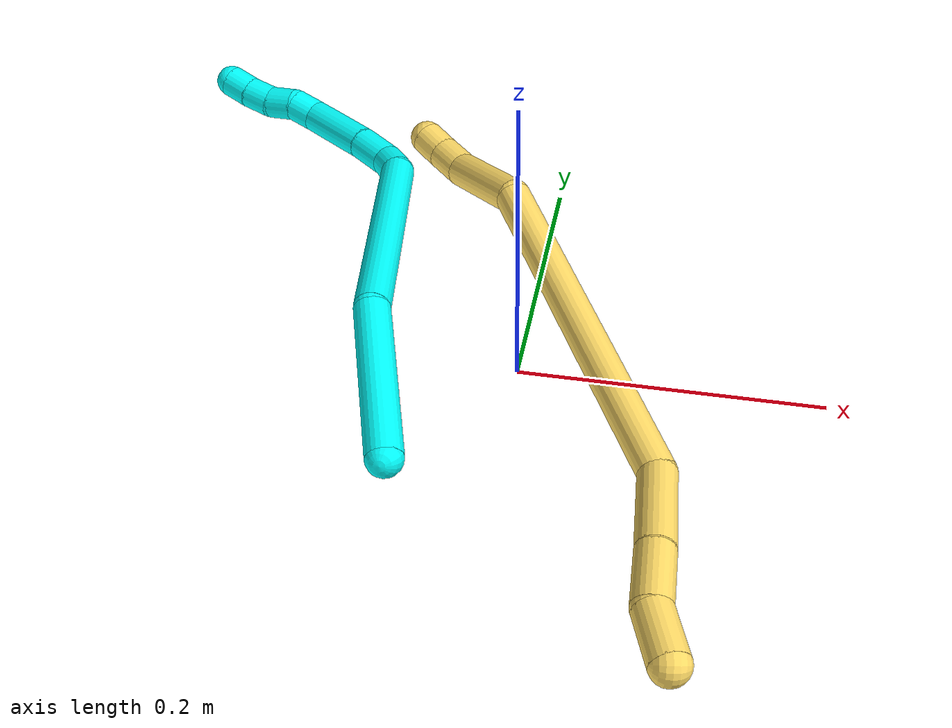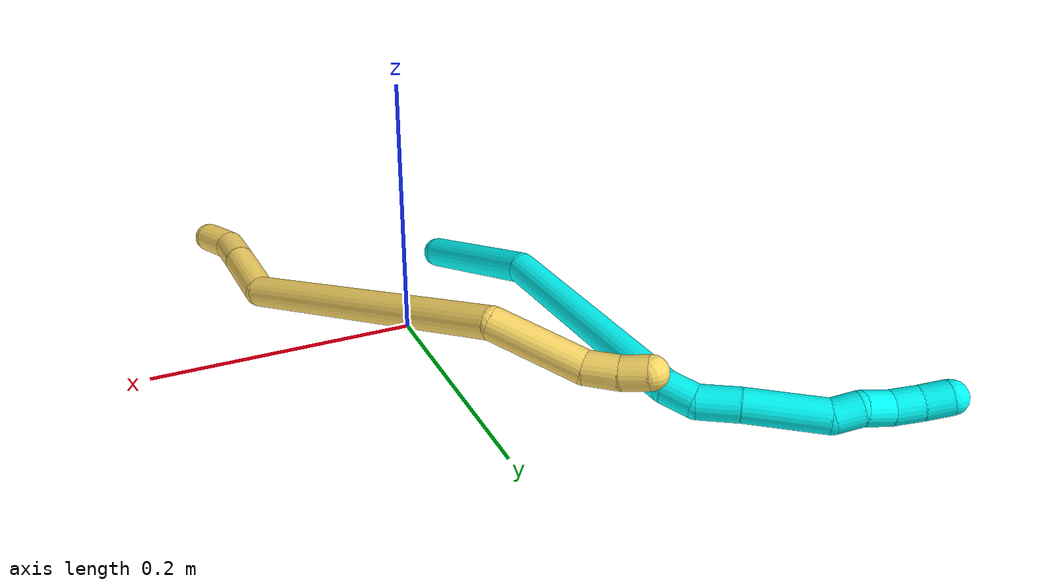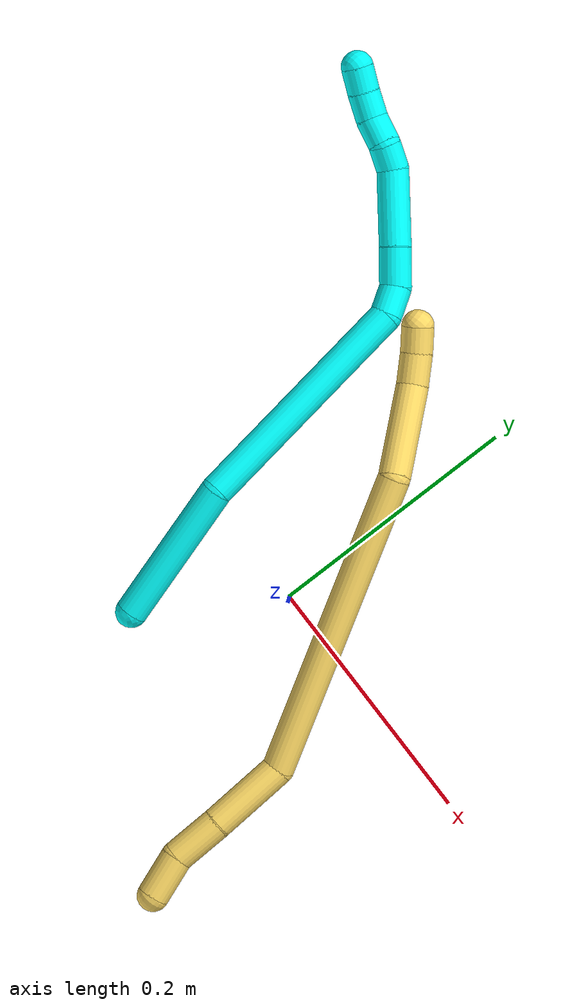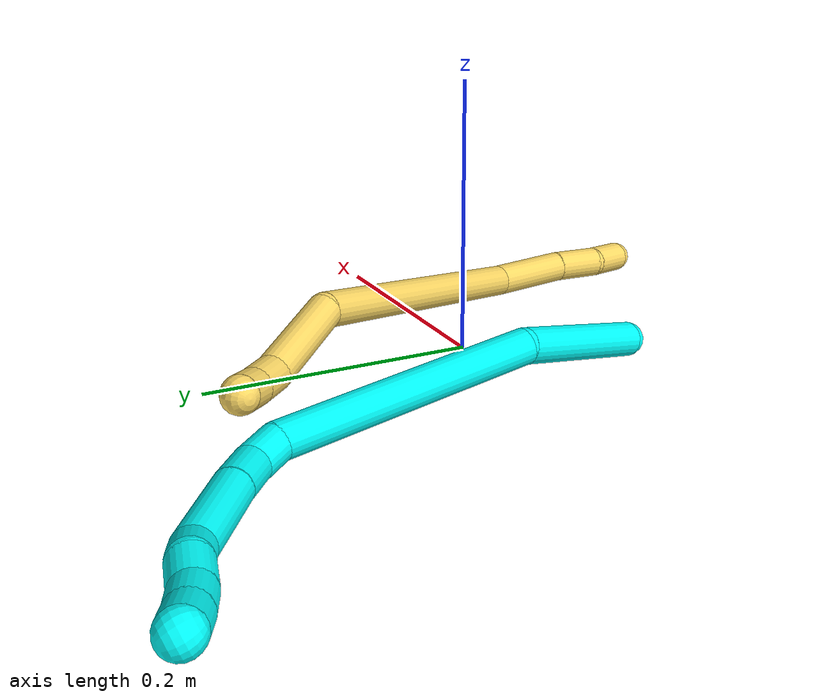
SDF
<sdf version="1.7">
 <world name="default">
  <model name="photoneo_s_sensor">
   <static>1</static>
   <pose>0 0 2 1.57079 1.57079 3.14159</pose>
   <link name="link">
    <inertial><mass>0.1</mass></inertial>
    <sensor name="sensor" type="depth">
     <update_rate>30</update_rate>
     <camera>
      <horizontal_fov>1.22</horizontal_fov>
      <image><width>1920</width><height>1200</height><format>B8G8R8</format></image>
      <clip><near>0.1</near><far>4</far></clip>
      <depth_camera><output>points</output></depth_camera>
     </camera>
     <plugin name="camera_plugin" filename="libgazebo_ros_depth_camera.so">
      <baseline>0.2</baseline>
      <alwaysOn>1</alwaysOn>
      <updateRate>0.0</updateRate>
      <cameraName>camera_ir</cameraName>
      <imageTopicName>/camera/color/image_raw</imageTopicName>
      <cameraInfoTopicName>/camera/color/camera_info</cameraInfoTopicName>
      <depthImageTopicName>/camera/depth/image_raw</depthImageTopicName>
      <depthImageCameraInfoTopicName>/camera/depth/camera_info</depthImageCameraInfoTopicName>
      <pointCloudTopicName>/camera/depth/points</pointCloudTopicName>
      <frameName>fr_optical</frameName>
      <pointCloudCutoff>0.1</pointCloudCutoff>
      <pointCloudCutoffMax>2.0</pointCloudCutoffMax>
      <distortionK1>0</distortionK1>
      <distortionK2>0</distortionK2>
      <distortionK3>0</distortionK3>
      <distortionT1>0</distortionT1>
      <distortionT2>0</distortionT2>
      <CxPrime>0</CxPrime>
      <Cx>0</Cx>
      <Cy>0</Cy>
      <focalLength>0</focalLength>
      <hackBaseline>0</hackBaseline>
     </plugin>
    </sensor>
   </link>
  </model>
  <model name="bin">
   <static>1</static>
   <link name="bottom">
    <collision name="collision-bottom">
     <pose>0 0 -0.01 0 -0 0</pose>
     <geometry><box><size>0.8 0.6 0.02</size></box></geometry>
     <surface>
      <friction><ode><mu>100</mu><mu2>100</mu2></ode></friction>
      <contact><collide_bitmask>65535</collide_bitmask></contact>
     </surface>
    </collision>
   </link>
   <link name="west_wall">
    <collision name="collision-west_wall">
     <pose>-0.41 0 0.1 0 -0 0</pose>
     <geometry><box><size>0.02 0.6 0.2</size></box></geometry>
     <surface>
      <friction><ode><mu>100</mu><mu2>100</mu2></ode></friction>
      <contact><collide_bitmask>65535</collide_bitmask></contact>
     </surface>
    </collision>
   </link>
   <link name="east_wall">
    <collision name="collision-east_wall">
     <pose>0.41 0 0.1 0 -0 0</pose>
     <geometry><box><size>0.02 0.6 0.2</size></box></geometry>
     <surface>
      <friction><ode><mu>100</mu><mu2>100</mu2></ode></friction>
      <contact><collide_bitmask>65535</collide_bitmask></contact>
     </surface>
    </collision>
   </link>
   <link name="south_wall">
    <collision name="collision-south_wall">
     <pose>0 -0.31 0.1 0 -0 0</pose>
     <geometry><box><size>0.8 0.02 0.2</size></box></geometry>
     <surface>
      <friction><ode><mu>100</mu><mu2>100</mu2></ode></friction>
      <contact><collide_bitmask>65535</collide_bitmask></contact>
     </surface>
    </collision>
   </link>
   <link name="north_wall">
    <collision name="collision-north_wall">
     <pose>0 0.31 0.1 0 -0 0</pose>
     <geometry><box><size>0.8 0.02 0.2</size></box></geometry>
     <surface>
      <friction><ode><mu>100</mu><mu2>100</mu2></ode></friction>
      <contact><collide_bitmask>65535</collide_bitmask></contact>
     </surface>
    </collision>
   </link>
  </model>
  <model name="3">
   <static>0</static>
   <link name="3">
    <collision name="collision-cylinder-e_1_1_4">
     <pose>-0.034478 0.004618 0.046215 -0.099585 -0.638569 0.032947</pose>
     <geometry><cylinder><radius>0.0125</radius><length>0.115688</length></cylinder></geometry>
     <surface>
      <friction><ode><mu>1.16</mu><mu2>1.16</mu2><slip1>0</slip1><slip2>0</slip2></ode></friction>
      <contact><ode><kp>1e+06</kp><kd>1</kd><max_vel>0</max_vel><min_depth>0.001</min_depth></ode></contact>
     </surface>
    </collision>
    <visual name="visual-cylinder-e_1_1_4">
     <pose>-0.034478 0.004618 0.046215 -0.099585 -0.638569 0.032947</pose>
     <geometry><cylinder><radius>0.0125</radius><length>0.115688</length></cylinder></geometry>
     <material><ambient>0.003922 1 0.996078 1</ambient></material>
    </visual>
    <collision name="collision-cylinder-e_2_4_5">
     <pose>-0.095939 0.014027 0.181366 -0.053829 -0.294178 0.007977</pose>
     <geometry><cylinder><radius>0.0125</radius><length>0.186124</length></cylinder></geometry>
     <surface>
      <friction><ode><mu>1.16</mu><mu2>1.16</mu2><slip1>0</slip1><slip2>0</slip2></ode></friction>
      <contact><ode><kp>1e+06</kp><kd>1</kd><max_vel>0</max_vel><min_depth>0.001</min_depth></ode></contact>
     </surface>
    </collision>
    <visual name="visual-cylinder-e_2_4_5">
     <pose>-0.095939 0.014027 0.181366 -0.053829 -0.294178 0.007977</pose>
     <geometry><cylinder><radius>0.0125</radius><length>0.186124</length></cylinder></geometry>
     <material><ambient>0.003922 1 0.996078 1</ambient></material>
    </visual>
    <collision name="collision-cylinder-e_3_5_6">
     <pose>-0.126581 0.024349 0.280157 -0.511268 -0.313109 0.08246</pose>
     <geometry><cylinder><radius>0.0125</radius><length>0.023757</length></cylinder></geometry>
     <surface>
      <friction><ode><mu>1.16</mu><mu2>1.16</mu2><slip1>0</slip1><slip2>0</slip2></ode></friction>
      <contact><ode><kp>1e+06</kp><kd>1</kd><max_vel>0</max_vel><min_depth>0.001</min_depth></ode></contact>
     </surface>
    </collision>
    <visual name="visual-cylinder-e_3_5_6">
     <pose>-0.126581 0.024349 0.280157 -0.511268 -0.313109 0.08246</pose>
     <geometry><cylinder><radius>0.0125</radius><length>0.023757</length></cylinder></geometry>
     <material><ambient>0.003922 1 0.996078 1</ambient></material>
    </visual>
    <collision name="collision-cylinder-e_4_6_7">
     <pose>-0.138517 0.039822 0.298261 -0.878379 -0.569771 0.273441</pose>
     <geometry><cylinder><radius>0.0125</radius><length>0.030687</length></cylinder></geometry>
     <surface>
      <friction><ode><mu>1.16</mu><mu2>1.16</mu2><slip1>0</slip1><slip2>0</slip2></ode></friction>
      <contact><ode><kp>1e+06</kp><kd>1</kd><max_vel>0</max_vel><min_depth>0.001</min_depth></ode></contact>
     </surface>
    </collision>
    <visual name="visual-cylinder-e_4_6_7">
     <pose>-0.138517 0.039822 0.298261 -0.878379 -0.569771 0.273441</pose>
     <geometry><cylinder><radius>0.0125</radius><length>0.030687</length></cylinder></geometry>
     <material><ambient>0.003922 1 0.996078 1</ambient></material>
    </visual>
    <collision name="collision-cylinder-e_5_7_8">
     <pose>-0.160868 0.070355 0.322874 -0.899195 -0.491349 0.240823</pose>
     <geometry><cylinder><radius>0.0125</radius><length>0.059658</length></cylinder></geometry>
     <surface>
      <friction><ode><mu>1.16</mu><mu2>1.16</mu2><slip1>0</slip1><slip2>0</slip2></ode></friction>
      <contact><ode><kp>1e+06</kp><kd>1</kd><max_vel>0</max_vel><min_depth>0.001</min_depth></ode></contact>
     </surface>
    </collision>
    <visual name="visual-cylinder-e_5_7_8">
     <pose>-0.160868 0.070355 0.322874 -0.899195 -0.491349 0.240823</pose>
     <geometry><cylinder><radius>0.0125</radius><length>0.059658</length></cylinder></geometry>
     <material><ambient>0.003922 1 0.996078 1</ambient></material>
    </visual>
    <collision name="collision-cylinder-e_6_8_9">
     <pose>-0.181695 0.098437 0.341233 -1.31073 -0.716494 0.560463</pose>
     <geometry><cylinder><radius>0.0125</radius><length>0.020566</length></cylinder></geometry>
     <surface>
      <friction><ode><mu>1.16</mu><mu2>1.16</mu2><slip1>0</slip1><slip2>0</slip2></ode></friction>
      <contact><ode><kp>1e+06</kp><kd>1</kd><max_vel>0</max_vel><min_depth>0.001</min_depth></ode></contact>
     </surface>
    </collision>
    <visual name="visual-cylinder-e_6_8_9">
     <pose>-0.181695 0.098437 0.341233 -1.31073 -0.716494 0.560463</pose>
     <geometry><cylinder><radius>0.0125</radius><length>0.020566</length></cylinder></geometry>
     <material><ambient>0.003922 1 0.996078 1</ambient></material>
    </visual>
    <collision name="collision-cylinder-e_7_9_10">
     <pose>-0.192005 0.115896 0.345615 -1.3356 -0.334067 0.264399</pose>
     <geometry><cylinder><radius>0.0125</radius><length>0.021693</length></cylinder></geometry>
     <surface>
      <friction><ode><mu>1.16</mu><mu2>1.16</mu2><slip1>0</slip1><slip2>0</slip2></ode></friction>
      <contact><ode><kp>1e+06</kp><kd>1</kd><max_vel>0</max_vel><min_depth>0.001</min_depth></ode></contact>
     </surface>
    </collision>
    <visual name="visual-cylinder-e_7_9_10">
     <pose>-0.192005 0.115896 0.345615 -1.3356 -0.334067 0.264399</pose>
     <geometry><cylinder><radius>0.0125</radius><length>0.021693</length></cylinder></geometry>
     <material><ambient>0.003922 1 0.996078 1</ambient></material>
    </visual>
    <collision name="collision-cylinder-e_8_10_11">
     <pose>-0.201726 0.134218 0.350823 -1.24535 -0.610056 0.444632</pose>
     <geometry><cylinder><radius>0.0125</radius><length>0.021522</length></cylinder></geometry>
     <surface>
      <friction><ode><mu>1.16</mu><mu2>1.16</mu2><slip1>0</slip1><slip2>0</slip2></ode></friction>
      <contact><ode><kp>1e+06</kp><kd>1</kd><max_vel>0</max_vel><min_depth>0.001</min_depth></ode></contact>
     </surface>
    </collision>
    <visual name="visual-cylinder-e_8_10_11">
     <pose>-0.201726 0.134218 0.350823 -1.24535 -0.610056 0.444632</pose>
     <geometry><cylinder><radius>0.0125</radius><length>0.021522</length></cylinder></geometry>
     <material><ambient>0.003922 1 0.996078 1</ambient></material>
    </visual>
    <collision name="collision-cylinder-e_9_11_2">
     <pose>-0.214484 0.149777 0.356424 -1.20228 -0.706689 0.495493</pose>
     <geometry><cylinder><radius>0.0125</radius><length>0.020305</length></cylinder></geometry>
     <surface>
      <friction><ode><mu>1.16</mu><mu2>1.16</mu2><slip1>0</slip1><slip2>0</slip2></ode></friction>
      <contact><ode><kp>1e+06</kp><kd>1</kd><max_vel>0</max_vel><min_depth>0.001</min_depth></ode></contact>
     </surface>
    </collision>
    <visual name="visual-cylinder-e_9_11_2">
     <pose>-0.214484 0.149777 0.356424 -1.20228 -0.706689 0.495493</pose>
     <geometry><cylinder><radius>0.0125</radius><length>0.020305</length></cylinder></geometry>
     <material><ambient>0.003922 1 0.996078 1</ambient></material>
    </visual>
    <collision name="collision-sphere-2">
     <pose>-0.221076 0.15698 0.359206 0 -0 0</pose>
     <geometry><sphere><radius>0.0125</radius></sphere></geometry>
     <surface>
      <friction><ode><mu>1.16</mu><mu2>1.16</mu2><slip1>0</slip1><slip2>0</slip2></ode></friction>
      <contact><ode><kp>1e+06</kp><kd>1</kd><max_vel>0</max_vel><min_depth>0.001</min_depth></ode></contact>
     </surface>
    </collision>
    <visual name="visual-sphere-2">
     <pose>-0.221076 0.15698 0.359206 0 -0 0</pose>
     <geometry><sphere><radius>0.0125</radius></sphere></geometry>
     <material><ambient>0.003922 1 0.996078 1</ambient></material>
    </visual>
    <collision name="collision-sphere-11">
     <pose>-0.207892 0.142575 0.353643 0 -0 0</pose>
     <geometry><sphere><radius>0.0125</radius></sphere></geometry>
     <surface>
      <friction><ode><mu>1.16</mu><mu2>1.16</mu2><slip1>0</slip1><slip2>0</slip2></ode></friction>
      <contact><ode><kp>1e+06</kp><kd>1</kd><max_vel>0</max_vel><min_depth>0.001</min_depth></ode></contact>
     </surface>
    </collision>
    <visual name="visual-sphere-11">
     <pose>-0.207892 0.142575 0.353643 0 -0 0</pose>
     <geometry><sphere><radius>0.0125</radius></sphere></geometry>
     <material><ambient>0.003922 1 0.996078 1</ambient></material>
    </visual>
    <collision name="collision-sphere-10">
     <pose>-0.195561 0.125861 0.348003 0 -0 0</pose>
     <geometry><sphere><radius>0.0125</radius></sphere></geometry>
     <surface>
      <friction><ode><mu>1.16</mu><mu2>1.16</mu2><slip1>0</slip1><slip2>0</slip2></ode></friction>
      <contact><ode><kp>1e+06</kp><kd>1</kd><max_vel>0</max_vel><min_depth>0.001</min_depth></ode></contact>
     </surface>
    </collision>
    <visual name="visual-sphere-10">
     <pose>-0.195561 0.125861 0.348003 0 -0 0</pose>
     <geometry><sphere><radius>0.0125</radius></sphere></geometry>
     <material><ambient>0.003922 1 0.996078 1</ambient></material>
    </visual>
    <collision name="collision-sphere-9">
     <pose>-0.188448 0.105931 0.343227 0 -0 0</pose>
     <geometry><sphere><radius>0.0125</radius></sphere></geometry>
     <surface>
      <friction><ode><mu>1.16</mu><mu2>1.16</mu2><slip1>0</slip1><slip2>0</slip2></ode></friction>
      <contact><ode><kp>1e+06</kp><kd>1</kd><max_vel>0</max_vel><min_depth>0.001</min_depth></ode></contact>
     </surface>
    </collision>
    <visual name="visual-sphere-9">
     <pose>-0.188448 0.105931 0.343227 0 -0 0</pose>
     <geometry><sphere><radius>0.0125</radius></sphere></geometry>
     <material><ambient>0.003922 1 0.996078 1</ambient></material>
    </visual>
    <collision name="collision-sphere-4">
     <pose>-0.068955 0.009235 0.092431 0 -0 0</pose>
     <geometry><sphere><radius>0.0125</radius></sphere></geometry>
     <surface>
      <friction><ode><mu>1.16</mu><mu2>1.16</mu2><slip1>0</slip1><slip2>0</slip2></ode></friction>
      <contact><ode><kp>1e+06</kp><kd>1</kd><max_vel>0</max_vel><min_depth>0.001</min_depth></ode></contact>
     </surface>
    </collision>
    <visual name="visual-sphere-4">
     <pose>-0.068955 0.009235 0.092431 0 -0 0</pose>
     <geometry><sphere><radius>0.0125</radius></sphere></geometry>
     <material><ambient>0.003922 1 0.996078 1</ambient></material>
    </visual>
    <collision name="collision-sphere-1">
     <geometry><sphere><radius>0.0125</radius></sphere></geometry>
     <surface>
      <friction><ode><mu>1.16</mu><mu2>1.16</mu2><slip1>0</slip1><slip2>0</slip2></ode></friction>
      <contact><ode><kp>1e+06</kp><kd>1</kd><max_vel>0</max_vel><min_depth>0.001</min_depth></ode></contact>
     </surface>
    </collision>
    <visual name="visual-sphere-1">
     <geometry><sphere><radius>0.0125</radius></sphere></geometry>
     <material><ambient>0.003922 1 0.996078 1</ambient></material>
    </visual>
    <collision name="collision-sphere-8">
     <pose>-0.174942 0.090943 0.339239 0 -0 0</pose>
     <geometry><sphere><radius>0.0125</radius></sphere></geometry>
     <surface>
      <friction><ode><mu>1.16</mu><mu2>1.16</mu2><slip1>0</slip1><slip2>0</slip2></ode></friction>
      <contact><ode><kp>1e+06</kp><kd>1</kd><max_vel>0</max_vel><min_depth>0.001</min_depth></ode></contact>
     </surface>
    </collision>
    <visual name="visual-sphere-8">
     <pose>-0.174942 0.090943 0.339239 0 -0 0</pose>
     <geometry><sphere><radius>0.0125</radius></sphere></geometry>
     <material><ambient>0.003922 1 0.996078 1</ambient></material>
    </visual>
    <collision name="collision-sphere-5">
     <pose>-0.122923 0.018819 0.270301 0 -0 0</pose>
     <geometry><sphere><radius>0.0125</radius></sphere></geometry>
     <surface>
      <friction><ode><mu>1.16</mu><mu2>1.16</mu2><slip1>0</slip1><slip2>0</slip2></ode></friction>
      <contact><ode><kp>1e+06</kp><kd>1</kd><max_vel>0</max_vel><min_depth>0.001</min_depth></ode></contact>
     </surface>
    </collision>
    <visual name="visual-sphere-5">
     <pose>-0.122923 0.018819 0.270301 0 -0 0</pose>
     <geometry><sphere><radius>0.0125</radius></sphere></geometry>
     <material><ambient>0.003922 1 0.996078 1</ambient></material>
    </visual>
    <collision name="collision-sphere-6">
     <pose>-0.13024 0.029878 0.290013 0 -0 0</pose>
     <geometry><sphere><radius>0.0125</radius></sphere></geometry>
     <surface>
      <friction><ode><mu>1.16</mu><mu2>1.16</mu2><slip1>0</slip1><slip2>0</slip2></ode></friction>
      <contact><ode><kp>1e+06</kp><kd>1</kd><max_vel>0</max_vel><min_depth>0.001</min_depth></ode></contact>
     </surface>
    </collision>
    <visual name="visual-sphere-6">
     <pose>-0.13024 0.029878 0.290013 0 -0 0</pose>
     <geometry><sphere><radius>0.0125</radius></sphere></geometry>
     <material><ambient>0.003922 1 0.996078 1</ambient></material>
    </visual>
    <collision name="collision-sphere-7">
     <pose>-0.146794 0.049766 0.306509 0 -0 0</pose>
     <geometry><sphere><radius>0.0125</radius></sphere></geometry>
     <surface>
      <friction><ode><mu>1.16</mu><mu2>1.16</mu2><slip1>0</slip1><slip2>0</slip2></ode></friction>
      <contact><ode><kp>1e+06</kp><kd>1</kd><max_vel>0</max_vel><min_depth>0.001</min_depth></ode></contact>
     </surface>
    </collision>
    <visual name="visual-sphere-7">
     <pose>-0.146794 0.049766 0.306509 0 -0 0</pose>
     <geometry><sphere><radius>0.0125</radius></sphere></geometry>
     <material><ambient>0.003922 1 0.996078 1</ambient></material>
    </visual>
    <inertial>
     <pose>-0.110597 0.039222 0.206953 0 -0 0</pose>
     <mass>0.5</mass>
     <inertia>
      <ixx>0.000653</ixx>
      <ixy>0</ixy>
      <ixz>0</ixz>
      <iyy>0.000726</iyy>
      <iyz>0</iyz>
      <izz>0.00022</izz>
     </inertia>
    </inertial>
   </link>
   <pose>-0.064364 -0.102178 0.011495 -2.35127 1.05042 -0.721432</pose>
  </model>
  <model name="5">
   <static>0</static>
   <link name="5">
    <collision name="collision-cylinder-e_1_1_4">
     <pose>0.005346 -0.006076 0.006464 0.754528 0.542316 0.219431</pose>
     <geometry><cylinder><radius>0.0125</radius><length>0.020715</length></cylinder></geometry>
     <surface>
      <friction><ode><mu>1.16</mu><mu2>1.16</mu2><slip1>0</slip1><slip2>0</slip2></ode></friction>
      <contact><ode><kp>1e+06</kp><kd>1</kd><max_vel>0</max_vel><min_depth>0.001</min_depth></ode></contact>
     </surface>
    </collision>
    <visual name="visual-cylinder-e_1_1_4">
     <pose>0.005346 -0.006076 0.006464 0.754528 0.542316 0.219431</pose>
     <geometry><cylinder><radius>0.0125</radius><length>0.020715</length></cylinder></geometry>
     <material><ambient>1 0.858824 0.4 1</ambient></material>
    </visual>
    <collision name="collision-cylinder-e_2_4_5">
     <pose>0.016213 -0.021217 0.020064 0.903817 0.446373 0.21946</pose>
     <geometry><cylinder><radius>0.0125</radius><length>0.025579</length></cylinder></geometry>
     <surface>
      <friction><ode><mu>1.16</mu><mu2>1.16</mu2><slip1>0</slip1><slip2>0</slip2></ode></friction>
      <contact><ode><kp>1e+06</kp><kd>1</kd><max_vel>0</max_vel><min_depth>0.001</min_depth></ode></contact>
     </surface>
    </collision>
    <visual name="visual-cylinder-e_2_4_5">
     <pose>0.016213 -0.021217 0.020064 0.903817 0.446373 0.21946</pose>
     <geometry><cylinder><radius>0.0125</radius><length>0.025579</length></cylinder></geometry>
     <material><ambient>1 0.858824 0.4 1</ambient></material>
    </visual>
    <collision name="collision-cylinder-e_3_5_6">
     <pose>0.028975 -0.062145 0.043988 1.0859 0.198425 0.11999</pose>
     <geometry><cylinder><radius>0.0125</radius><length>0.073473</length></cylinder></geometry>
     <surface>
      <friction><ode><mu>1.16</mu><mu2>1.16</mu2><slip1>0</slip1><slip2>0</slip2></ode></friction>
      <contact><ode><kp>1e+06</kp><kd>1</kd><max_vel>0</max_vel><min_depth>0.001</min_depth></ode></contact>
     </surface>
    </collision>
    <visual name="visual-cylinder-e_3_5_6">
     <pose>0.028975 -0.062145 0.043988 1.0859 0.198425 0.11999</pose>
     <geometry><cylinder><radius>0.0125</radius><length>0.073473</length></cylinder></geometry>
     <material><ambient>1 0.858824 0.4 1</ambient></material>
    </visual>
    <collision name="collision-cylinder-e_4_6_7">
     <pose>0.111474 -0.179979 0.102166 1.12209 0.667825 0.429276</pose>
     <geometry><cylinder><radius>0.0125</radius><length>0.243046</length></cylinder></geometry>
     <surface>
      <friction><ode><mu>1.16</mu><mu2>1.16</mu2><slip1>0</slip1><slip2>0</slip2></ode></friction>
      <contact><ode><kp>1e+06</kp><kd>1</kd><max_vel>0</max_vel><min_depth>0.001</min_depth></ode></contact>
     </surface>
    </collision>
    <visual name="visual-cylinder-e_4_6_7">
     <pose>0.111474 -0.179979 0.102166 1.12209 0.667825 0.429276</pose>
     <geometry><cylinder><radius>0.0125</radius><length>0.243046</length></cylinder></geometry>
     <material><ambient>1 0.858824 0.4 1</ambient></material>
    </visual>
    <collision name="collision-cylinder-e_5_7_8">
     <pose>0.202034 -0.292763 0.139439 1.72321 0.513656 0.593993</pose>
     <geometry><cylinder><radius>0.0125</radius><length>0.062292</length></cylinder></geometry>
     <surface>
      <friction><ode><mu>1.16</mu><mu2>1.16</mu2><slip1>0</slip1><slip2>0</slip2></ode></friction>
      <contact><ode><kp>1e+06</kp><kd>1</kd><max_vel>0</max_vel><min_depth>0.001</min_depth></ode></contact>
     </surface>
    </collision>
    <visual name="visual-cylinder-e_5_7_8">
     <pose>0.202034 -0.292763 0.139439 1.72321 0.513656 0.593993</pose>
     <geometry><cylinder><radius>0.0125</radius><length>0.062292</length></cylinder></geometry>
     <material><ambient>1 0.858824 0.4 1</ambient></material>
    </visual>
    <collision name="collision-cylinder-e_6_8_9">
     <pose>0.228494 -0.335669 0.132305 1.75607 0.598047 0.711239</pose>
     <geometry><cylinder><radius>0.0125</radius><length>0.039626</length></cylinder></geometry>
     <surface>
      <friction><ode><mu>1.16</mu><mu2>1.16</mu2><slip1>0</slip1><slip2>0</slip2></ode></friction>
      <contact><ode><kp>1e+06</kp><kd>1</kd><max_vel>0</max_vel><min_depth>0.001</min_depth></ode></contact>
     </surface>
    </collision>
    <visual name="visual-cylinder-e_6_8_9">
     <pose>0.228494 -0.335669 0.132305 1.75607 0.598047 0.711239</pose>
     <geometry><cylinder><radius>0.0125</radius><length>0.039626</length></cylinder></geometry>
     <material><ambient>1 0.858824 0.4 1</ambient></material>
    </visual>
    <collision name="collision-cylinder-e_7_9_2">
     <pose>0.249806 -0.365859 0.132307 1.35985 0.6138 0.50168</pose>
     <geometry><cylinder><radius>0.0125</radius><length>0.035269</length></cylinder></geometry>
     <surface>
      <friction><ode><mu>1.16</mu><mu2>1.16</mu2><slip1>0</slip1><slip2>0</slip2></ode></friction>
      <contact><ode><kp>1e+06</kp><kd>1</kd><max_vel>0</max_vel><min_depth>0.001</min_depth></ode></contact>
     </surface>
    </collision>
    <visual name="visual-cylinder-e_7_9_2">
     <pose>0.249806 -0.365859 0.132307 1.35985 0.6138 0.50168</pose>
     <geometry><cylinder><radius>0.0125</radius><length>0.035269</length></cylinder></geometry>
     <material><ambient>1 0.858824 0.4 1</ambient></material>
    </visual>
    <collision name="collision-sphere-2">
     <pose>0.259964 -0.379956 0.135325 0 -0 0</pose>
     <geometry><sphere><radius>0.0125</radius></sphere></geometry>
     <surface>
      <friction><ode><mu>1.16</mu><mu2>1.16</mu2><slip1>0</slip1><slip2>0</slip2></ode></friction>
      <contact><ode><kp>1e+06</kp><kd>1</kd><max_vel>0</max_vel><min_depth>0.001</min_depth></ode></contact>
     </surface>
    </collision>
    <visual name="visual-sphere-2">
     <pose>0.259964 -0.379956 0.135325 0 -0 0</pose>
     <geometry><sphere><radius>0.0125</radius></sphere></geometry>
     <material><ambient>1 0.858824 0.4 1</ambient></material>
    </visual>
    <collision name="collision-sphere-9">
     <pose>0.239649 -0.351763 0.129288 0 -0 0</pose>
     <geometry><sphere><radius>0.0125</radius></sphere></geometry>
     <surface>
      <friction><ode><mu>1.16</mu><mu2>1.16</mu2><slip1>0</slip1><slip2>0</slip2></ode></friction>
      <contact><ode><kp>1e+06</kp><kd>1</kd><max_vel>0</max_vel><min_depth>0.001</min_depth></ode></contact>
     </surface>
    </collision>
    <visual name="visual-sphere-9">
     <pose>0.239649 -0.351763 0.129288 0 -0 0</pose>
     <geometry><sphere><radius>0.0125</radius></sphere></geometry>
     <material><ambient>1 0.858824 0.4 1</ambient></material>
    </visual>
    <collision name="collision-sphere-4">
     <pose>0.010691 -0.012153 0.012927 0 -0 0</pose>
     <geometry><sphere><radius>0.0125</radius></sphere></geometry>
     <surface>
      <friction><ode><mu>1.16</mu><mu2>1.16</mu2><slip1>0</slip1><slip2>0</slip2></ode></friction>
      <contact><ode><kp>1e+06</kp><kd>1</kd><max_vel>0</max_vel><min_depth>0.001</min_depth></ode></contact>
     </surface>
    </collision>
    <visual name="visual-sphere-4">
     <pose>0.010691 -0.012153 0.012927 0 -0 0</pose>
     <geometry><sphere><radius>0.0125</radius></sphere></geometry>
     <material><ambient>1 0.858824 0.4 1</ambient></material>
    </visual>
    <collision name="collision-sphere-1">
     <geometry><sphere><radius>0.0125</radius></sphere></geometry>
     <surface>
      <friction><ode><mu>1.16</mu><mu2>1.16</mu2><slip1>0</slip1><slip2>0</slip2></ode></friction>
      <contact><ode><kp>1e+06</kp><kd>1</kd><max_vel>0</max_vel><min_depth>0.001</min_depth></ode></contact>
     </surface>
    </collision>
    <visual name="visual-sphere-1">
     <geometry><sphere><radius>0.0125</radius></sphere></geometry>
     <material><ambient>1 0.858824 0.4 1</ambient></material>
    </visual>
    <collision name="collision-sphere-8">
     <pose>0.217339 -0.319575 0.135321 0 -0 0</pose>
     <geometry><sphere><radius>0.0125</radius></sphere></geometry>
     <surface>
      <friction><ode><mu>1.16</mu><mu2>1.16</mu2><slip1>0</slip1><slip2>0</slip2></ode></friction>
      <contact><ode><kp>1e+06</kp><kd>1</kd><max_vel>0</max_vel><min_depth>0.001</min_depth></ode></contact>
     </surface>
    </collision>
    <visual name="visual-sphere-8">
     <pose>0.217339 -0.319575 0.135321 0 -0 0</pose>
     <geometry><sphere><radius>0.0125</radius></sphere></geometry>
     <material><ambient>1 0.858824 0.4 1</ambient></material>
    </visual>
    <collision name="collision-sphere-5">
     <pose>0.021734 -0.030281 0.0272 0 -0 0</pose>
     <geometry><sphere><radius>0.0125</radius></sphere></geometry>
     <surface>
      <friction><ode><mu>1.16</mu><mu2>1.16</mu2><slip1>0</slip1><slip2>0</slip2></ode></friction>
      <contact><ode><kp>1e+06</kp><kd>1</kd><max_vel>0</max_vel><min_depth>0.001</min_depth></ode></contact>
     </surface>
    </collision>
    <visual name="visual-sphere-5">
     <pose>0.021734 -0.030281 0.0272 0 -0 0</pose>
     <geometry><sphere><radius>0.0125</radius></sphere></geometry>
     <material><ambient>1 0.858824 0.4 1</ambient></material>
    </visual>
    <collision name="collision-sphere-6">
     <pose>0.036217 -0.094008 0.060775 0 -0 0</pose>
     <geometry><sphere><radius>0.0125</radius></sphere></geometry>
     <surface>
      <friction><ode><mu>1.16</mu><mu2>1.16</mu2><slip1>0</slip1><slip2>0</slip2></ode></friction>
      <contact><ode><kp>1e+06</kp><kd>1</kd><max_vel>0</max_vel><min_depth>0.001</min_depth></ode></contact>
     </surface>
    </collision>
    <visual name="visual-sphere-6">
     <pose>0.036217 -0.094008 0.060775 0 -0 0</pose>
     <geometry><sphere><radius>0.0125</radius></sphere></geometry>
     <material><ambient>1 0.858824 0.4 1</ambient></material>
    </visual>
    <collision name="collision-sphere-7">
     <pose>0.18673 -0.26595 0.143558 0 -0 0</pose>
     <geometry><sphere><radius>0.0125</radius></sphere></geometry>
     <surface>
      <friction><ode><mu>1.16</mu><mu2>1.16</mu2><slip1>0</slip1><slip2>0</slip2></ode></friction>
      <contact><ode><kp>1e+06</kp><kd>1</kd><max_vel>0</max_vel><min_depth>0.001</min_depth></ode></contact>
     </surface>
    </collision>
    <visual name="visual-sphere-7">
     <pose>0.18673 -0.26595 0.143558 0 -0 0</pose>
     <geometry><sphere><radius>0.0125</radius></sphere></geometry>
     <material><ambient>1 0.858824 0.4 1</ambient></material>
    </visual>
    <inertial>
     <pose>0.120395 -0.186839 0.09461 0 -0 0</pose>
     <mass>0.5</mass>
     <inertia>
      <ixx>0.001359</ixx>
      <ixy>0</ixy>
      <ixz>0</ixz>
      <iyy>0.001169</iyy>
      <iyz>0</iyz>
      <izz>0.000153</izz>
     </inertia>
    </inertial>
   </link>
   <pose>-0.103652 0.203279 0.041 -1.72107 1.00633 -1.5002</pose>
  </model>
 </world>
</sdf>
